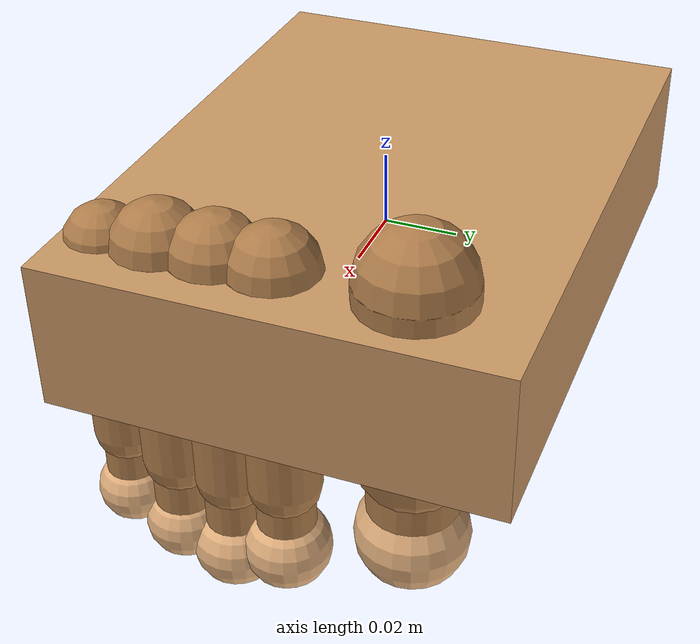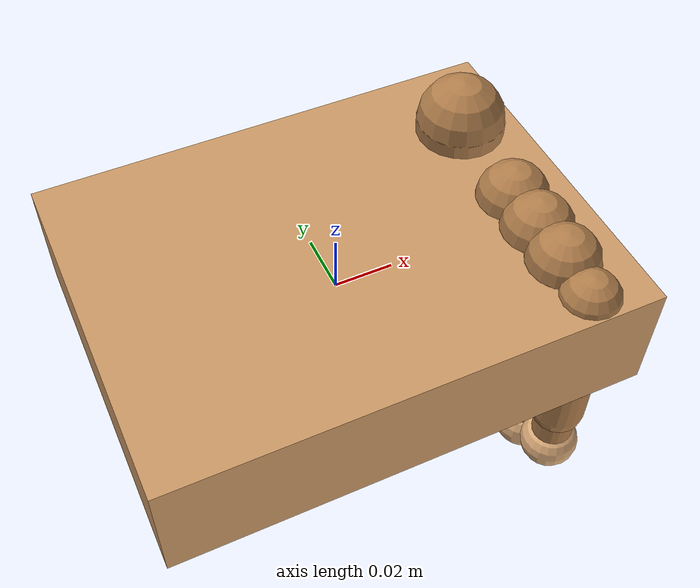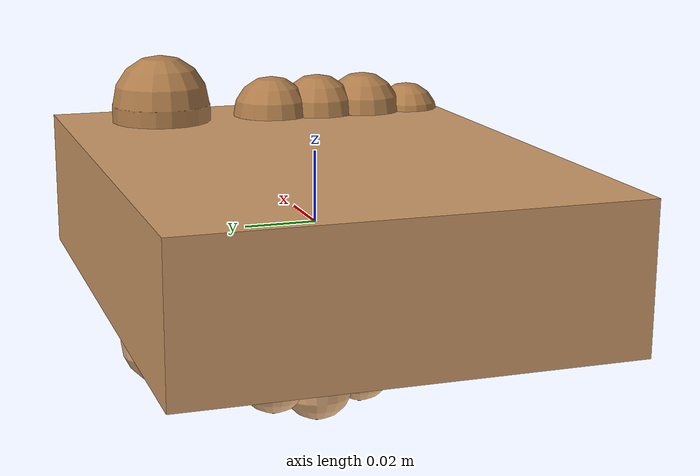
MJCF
<mujoco model="dexterous_hand">
  <compiler angle="radian" meshdir="../meshes"/>

  <option timestep="0.002" gravity="0 0 -9.81" iterations="50" jacobian="dense">
    <flag constraint="enable" contact="enable" energy="enable"/>
  </option>

  <default>
    <joint armature="0.001" damping="5" frictionloss="0.05" limited="true"/>
    <geom rgba="0.6 0.6 0.6 1" margin="0.001" condim="3" friction="0.8 0.01 0.01"/>
  </default>

  <asset>
    <texture name="metal" type="2d" builtin="checker" width="256" height="256" rgb1="0.7 0.7 0.7" rgb2="0.9 0.9 0.9"/>
    <material name="metal_mat" texture="metal" texrepeat="2 2"/>
    <texture name="skin" type="2d" builtin="gradient" width="256" height="256" rgb1="0.8 0.6 0.4" rgb2="0.6 0.4 0.3"/>
    <material name="skin_mat" texture="skin"/>
  </asset>

  <worldbody>
    <!-- Site for frame sensors -->
    <site name="palm_site" pos="0 0 0" size="0.001"/>
    <site name="thumb_tendon_site" pos="0 0 0" size="0.001"/>

    <body name="palm" pos="0 0 0">
      <geom name="palm_geom" type="box" size="0.08 0.06 0.02" rgba="0.8 0.6 0.4 1" material="skin_mat"/>

      <!-- Thumb -->
      <body name="thumb_base" pos="0.06 0.03 0">
        <joint name="thumb_abd" type="hinge" axis="0 0 1" range="-0.8 0.8" stiffness="500"/>
        <geom name="thumb_base_geom" type="capsule" size="0.015 0.025" rgba="0.7 0.5 0.3 1" material="skin_mat"/>

        <body name="thumb_proximal" pos="0 0 -0.025">
          <joint name="thumb_flex1" type="hinge" axis="1 0 0" range="0 1.5" stiffness="500"/>
          <geom name="thumb_proximal_geom" type="capsule" size="0.012 0.025" rgba="0.7 0.5 0.3 1" material="skin_mat"/>

          <body name="thumb_distal" pos="0 0 -0.025">
            <joint name="thumb_flex2" type="hinge" axis="1 0 0" range="0 1.8" stiffness="500"/>
            <geom name="thumb_distal_geom" type="sphere" size="0.015" rgba="0.9 0.7 0.5 1" material="skin_mat"/>
            <site name="thumb_tip" pos="0 0 -0.015" size="0.001"/>
          </body>
        </body>
      </body>

      <!-- Index Finger -->
      <body name="index_base" pos="0.06 -0.005 0">
        <joint name="index_abd" type="hinge" axis="0 0 1" range="-0.5 0.5" stiffness="500"/>
        <geom name="index_base_geom" type="capsule" size="0.012 0.02" rgba="0.7 0.5 0.3 1" material="skin_mat"/>

        <body name="index_proximal" pos="0 0 -0.02">
          <joint name="index_flex1" type="hinge" axis="1 0 0" range="0 1.8" stiffness="500"/>
          <geom name="index_proximal_geom" type="capsule" size="0.01 0.025" rgba="0.7 0.5 0.3 1" material="skin_mat"/>

          <body name="index_middle" pos="0 0 -0.025">
            <joint name="index_flex2" type="hinge" axis="1 0 0" range="0 1.8" stiffness="500"/>
            <geom name="index_middle_geom" type="capsule" size="0.008 0.022" rgba="0.7 0.5 0.3 1" material="skin_mat"/>

            <body name="index_distal" pos="0 0 -0.022">
              <joint name="index_flex3" type="hinge" axis="1 0 0" range="0 1.5" stiffness="500"/>
              <geom name="index_distal_geom" type="sphere" size="0.012" rgba="0.9 0.7 0.5 1" material="skin_mat"/>
              <site name="index_tip" pos="0 0 -0.012" size="0.001"/>
            </body>
          </body>
        </body>
      </body>

      <!-- Middle Finger -->
      <body name="middle_base" pos="0.06 -0.02 0">
        <joint name="middle_abd" type="hinge" axis="0 0 1" range="-0.3 0.3" stiffness="500"/>
        <geom name="middle_base_geom" type="capsule" size="0.012 0.02" rgba="0.7 0.5 0.3 1" material="skin_mat"/>

        <body name="middle_proximal" pos="0 0 -0.02">
          <joint name="middle_flex1" type="hinge" axis="1 0 0" range="0 1.8" stiffness="500"/>
          <geom name="middle_proximal_geom" type="capsule" size="0.01 0.027" rgba="0.7 0.5 0.3 1" material="skin_mat"/>

          <body name="middle_middle" pos="0 0 -0.027">
            <joint name="middle_flex2" type="hinge" axis="1 0 0" range="0 1.8" stiffness="500"/>
            <geom name="middle_middle_geom" type="capsule" size="0.008 0.024" rgba="0.7 0.5 0.3 1" material="skin_mat"/>

            <body name="middle_distal" pos="0 0 -0.024">
              <joint name="middle_flex3" type="hinge" axis="1 0 0" range="0 1.5" stiffness="500"/>
              <geom name="middle_distal_geom" type="sphere" size="0.012" rgba="0.9 0.7 0.5 1" material="skin_mat"/>
              <site name="middle_tip" pos="0 0 -0.012" size="0.001"/>
            </body>
          </body>
        </body>
      </body>

      <!-- Ring Finger -->
      <body name="ring_base" pos="0.06 -0.035 0">
        <joint name="ring_abd" type="hinge" axis="0 0 1" range="-0.3 0.3" stiffness="500"/>
        <geom name="ring_base_geom" type="capsule" size="0.012 0.02" rgba="0.7 0.5 0.3 1" material="skin_mat"/>

        <body name="ring_proximal" pos="0 0 -0.02">
          <joint name="ring_flex1" type="hinge" axis="1 0 0" range="0 1.8" stiffness="500"/>
          <geom name="ring_proximal_geom" type="capsule" size="0.01 0.025" rgba="0.7 0.5 0.3 1" material="skin_mat"/>

          <body name="ring_middle" pos="0 0 -0.025">
            <joint name="ring_flex2" type="hinge" axis="1 0 0" range="0 1.8" stiffness="500"/>
            <geom name="ring_middle_geom" type="capsule" size="0.008 0.022" rgba="0.7 0.5 0.3 1" material="skin_mat"/>

            <body name="ring_distal" pos="0 0 -0.022">
              <joint name="ring_flex3" type="hinge" axis="1 0 0" range="0 1.5" stiffness="500"/>
              <geom name="ring_distal_geom" type="sphere" size="0.011" rgba="0.9 0.7 0.5 1" material="skin_mat"/>
              <site name="ring_tip" pos="0 0 -0.011" size="0.001"/>
            </body>
          </body>
        </body>
      </body>

      <!-- Pinky Finger -->
      <body name="pinky_base" pos="0.06 -0.05 0">
        <joint name="pinky_abd" type="hinge" axis="0 0 1" range="-0.6 0.2" stiffness="500"/>
        <geom name="pinky_base_geom" type="capsule" size="0.01 0.018" rgba="0.7 0.5 0.3 1" material="skin_mat"/>

        <body name="pinky_proximal" pos="0 0 -0.018">
          <joint name="pinky_flex1" type="hinge" axis="1 0 0" range="0 1.8" stiffness="500"/>
          <geom name="pinky_proximal_geom" type="capsule" size="0.009 0.022" rgba="0.7 0.5 0.3 1" material="skin_mat"/>

          <body name="pinky_middle" pos="0 0 -0.022">
            <joint name="pinky_flex2" type="hinge" axis="1 0 0" range="0 1.8" stiffness="500"/>
            <geom name="pinky_middle_geom" type="capsule" size="0.007 0.02" rgba="0.7 0.5 0.3 1" material="skin_mat"/>

            <body name="pinky_distal" pos="0 0 -0.02">
              <joint name="pinky_flex3" type="hinge" axis="1 0 0" range="0 1.5" stiffness="500"/>
              <geom name="pinky_distal_geom" type="sphere" size="0.01" rgba="0.9 0.7 0.5 1" material="skin_mat"/>
              <site name="pinky_tip" pos="0 0 -0.01" size="0.001"/>
            </body>
          </body>
        </body>
      </body>
    </body>
  </worldbody>

  <actuator>
    <position name="thumb_abd_motor" joint="thumb_abd" kp="1000" kv="100"/>
    <position name="thumb_flex1_motor" joint="thumb_flex1" kp="1000" kv="100"/>
    <position name="thumb_flex2_motor" joint="thumb_flex2" kp="1000" kv="100"/>

    <position name="index_abd_motor" joint="index_abd" kp="1000" kv="100"/>
    <position name="index_flex1_motor" joint="index_flex1" kp="1000" kv="100"/>
    <position name="index_flex2_motor" joint="index_flex2" kp="1000" kv="100"/>
    <position name="index_flex3_motor" joint="index_flex3" kp="1000" kv="100"/>

    <position name="middle_abd_motor" joint="middle_abd" kp="1000" kv="100"/>
    <position name="middle_flex1_motor" joint="middle_flex1" kp="1000" kv="100"/>
    <position name="middle_flex2_motor" joint="middle_flex2" kp="1000" kv="100"/>
    <position name="middle_flex3_motor" joint="middle_flex3" kp="1000" kv="100"/>

    <position name="ring_abd_motor" joint="ring_abd" kp="1000" kv="100"/>
    <position name="ring_flex1_motor" joint="ring_flex1" kp="1000" kv="100"/>
    <position name="ring_flex2_motor" joint="ring_flex2" kp="1000" kv="100"/>
    <position name="ring_flex3_motor" joint="ring_flex3" kp="1000" kv="100"/>

    <position name="pinky_abd_motor" joint="pinky_abd" kp="1000" kv="100"/>
    <position name="pinky_flex1_motor" joint="pinky_flex1" kp="1000" kv="100"/>
    <position name="pinky_flex2_motor" joint="pinky_flex2" kp="1000" kv="100"/>
    <position name="pinky_flex3_motor" joint="pinky_flex3" kp="1000" kv="100"/>
  </actuator>

  <sensor>
    <!-- Joint position sensors -->
    <jointpos name="thumb_abd_pos" joint="thumb_abd"/>
    <jointpos name="thumb_flex1_pos" joint="thumb_flex1"/>
    <jointpos name="thumb_flex2_pos" joint="thumb_flex2"/>
    <jointpos name="index_abd_pos" joint="index_abd"/>
    <jointpos name="index_flex1_pos" joint="index_flex1"/>
    <jointpos name="index_flex2_pos" joint="index_flex2"/>
    <jointpos name="index_flex3_pos" joint="index_flex3"/>
    <jointpos name="middle_abd_pos" joint="middle_abd"/>
    <jointpos name="middle_flex1_pos" joint="middle_flex1"/>
    <jointpos name="middle_flex2_pos" joint="middle_flex2"/>
    <jointpos name="middle_flex3_pos" joint="middle_flex3"/>
    <jointpos name="ring_abd_pos" joint="ring_abd"/>
    <jointpos name="ring_flex1_pos" joint="ring_flex1"/>
    <jointpos name="ring_flex2_pos" joint="ring_flex2"/>
    <jointpos name="ring_flex3_pos" joint="ring_flex3"/>
    <jointpos name="pinky_abd_pos" joint="pinky_abd"/>
    <jointpos name="pinky_flex1_pos" joint="pinky_flex1"/>
    <jointpos name="pinky_flex2_pos" joint="pinky_flex2"/>
    <jointpos name="pinky_flex3_pos" joint="pinky_flex3"/>

    <!-- Joint velocity sensors -->
    <jointvel name="thumb_abd_vel" joint="thumb_abd"/>
    <jointvel name="thumb_flex1_vel" joint="thumb_flex1"/>
    <jointvel name="thumb_flex2_vel" joint="thumb_flex2"/>
    <jointvel name="index_abd_vel" joint="index_abd"/>
    <jointvel name="index_flex1_vel" joint="index_flex1"/>
    <jointvel name="index_flex2_vel" joint="index_flex2"/>
    <jointvel name="index_flex3_vel" joint="index_flex3"/>
    <jointvel name="middle_abd_vel" joint="middle_abd"/>
    <jointvel name="middle_flex1_vel" joint="middle_flex1"/>
    <jointvel name="middle_flex2_vel" joint="middle_flex2"/>
    <jointvel name="middle_flex3_vel" joint="middle_flex3"/>
    <jointvel name="ring_abd_vel" joint="ring_abd"/>
    <jointvel name="ring_flex1_vel" joint="ring_flex1"/>
    <jointvel name="ring_flex2_vel" joint="ring_flex2"/>
    <jointvel name="ring_flex3_vel" joint="ring_flex3"/>
    <jointvel name="pinky_abd_vel" joint="pinky_abd"/>
    <jointvel name="pinky_flex1_vel" joint="pinky_flex1"/>
    <jointvel name="pinky_flex2_vel" joint="pinky_flex2"/>
    <jointvel name="pinky_flex3_vel" joint="pinky_flex3"/>

    <!-- Actuator force sensors -->
    <actuatorfrc name="thumb_abd_frc" actuator="thumb_abd_motor"/>
    <actuatorfrc name="thumb_flex1_frc" actuator="thumb_flex1_motor"/>
    <actuatorfrc name="thumb_flex2_frc" actuator="thumb_flex2_motor"/>
    <actuatorfrc name="index_abd_frc" actuator="index_abd_motor"/>
    <actuatorfrc name="index_flex1_frc" actuator="index_flex1_motor"/>
    <actuatorfrc name="index_flex2_frc" actuator="index_flex2_motor"/>
    <actuatorfrc name="index_flex3_frc" actuator="index_flex3_motor"/>
    <actuatorfrc name="middle_abd_frc" actuator="middle_abd_motor"/>
    <actuatorfrc name="middle_flex1_frc" actuator="middle_flex1_motor"/>
    <actuatorfrc name="middle_flex2_frc" actuator="middle_flex2_motor"/>
    <actuatorfrc name="middle_flex3_frc" actuator="middle_flex3_motor"/>
    <actuatorfrc name="ring_abd_frc" actuator="ring_abd_motor"/>
    <actuatorfrc name="ring_flex1_frc" actuator="ring_flex1_motor"/>
    <actuatorfrc name="ring_flex2_frc" actuator="ring_flex2_motor"/>
    <actuatorfrc name="ring_flex3_frc" actuator="ring_flex3_motor"/>
    <actuatorfrc name="pinky_abd_frc" actuator="pinky_abd_motor"/>
    <actuatorfrc name="pinky_flex1_frc" actuator="pinky_flex1_motor"/>
    <actuatorfrc name="pinky_flex2_frc" actuator="pinky_flex2_motor"/>
    <actuatorfrc name="pinky_flex3_frc" actuator="pinky_flex3_motor"/>

    <!-- Touch sensors on fingertips -->
    <touch name="thumb_touch" site="thumb_tip"/>
    <touch name="index_touch" site="index_tip"/>
    <touch name="middle_touch" site="middle_tip"/>
    <touch name="ring_touch" site="ring_tip"/>
    <touch name="pinky_touch" site="pinky_tip"/>

    <!-- IMU on palm -->
    <accelerometer name="palm_imu_acc" site="palm_site"/>
    <gyro name="palm_imu_gyro" site="palm_site"/>
  </sensor>
</mujoco>
